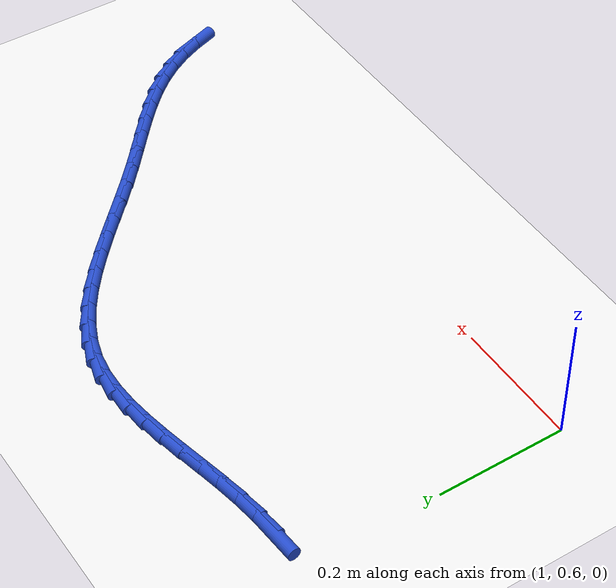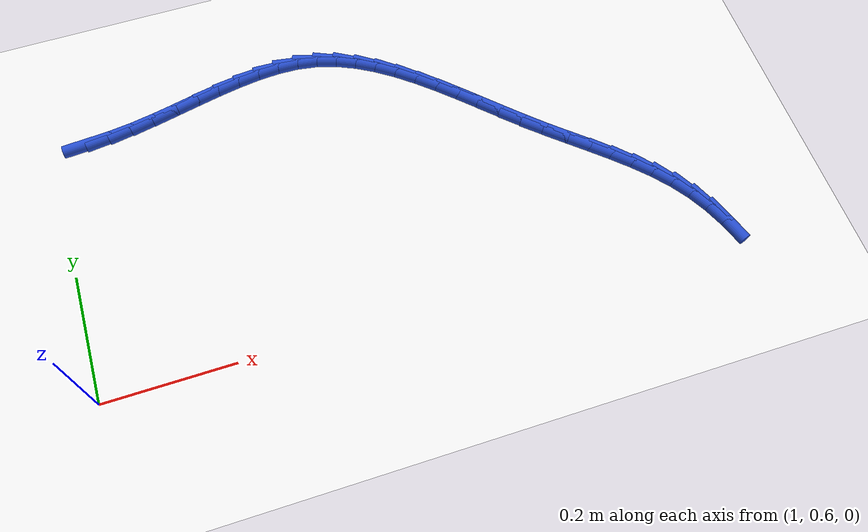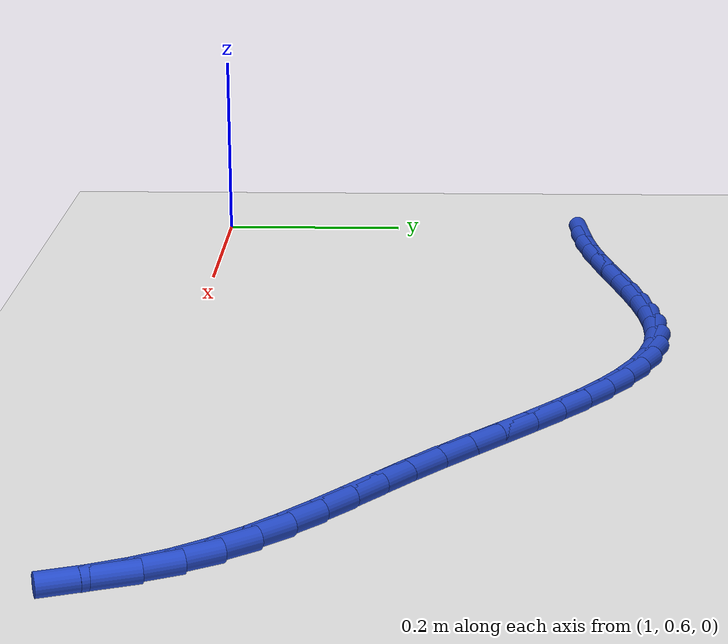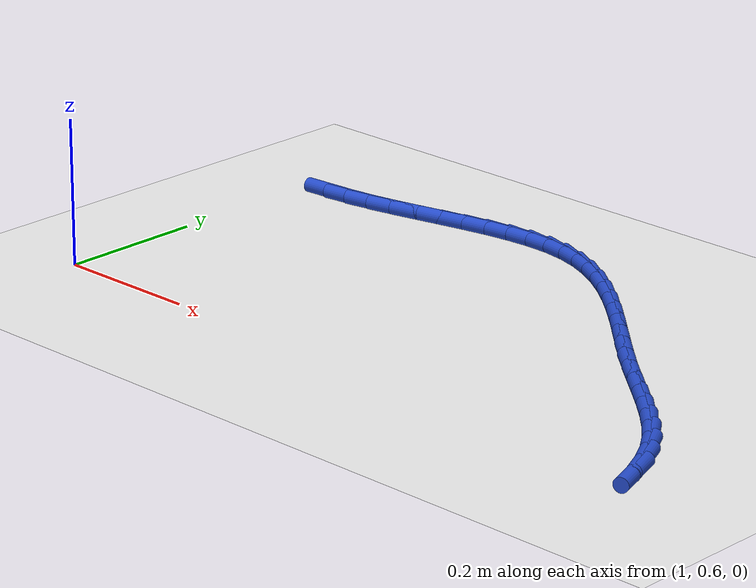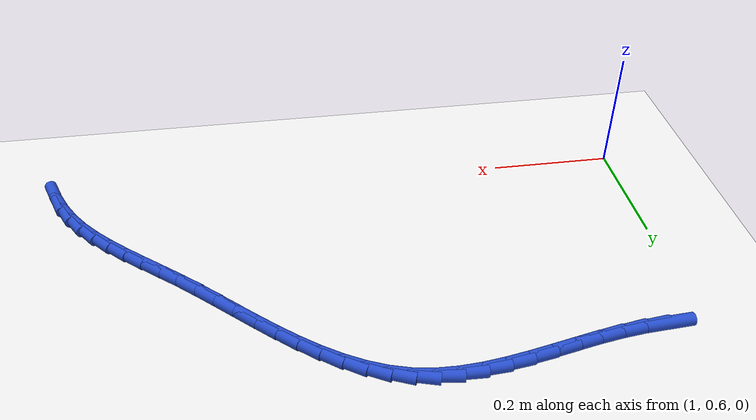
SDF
<sdf version="1.6">
 <world name="default">
  <model name="ground_plane">
   <static>1</static>
   <link name="link">
    <collision name="collision">
     <geometry><plane><normal>0 0 1</normal><size>100 100</size></plane></geometry>
     <surface><friction><ode><mu>100</mu><mu2>50</mu2></ode></friction></surface>
    </collision>
    <visual name="visual">
     <cast_shadows>0</cast_shadows>
     <geometry><plane><normal>0 0 1</normal><size>100 100</size></plane></geometry>
     <material>
      <script><uri>file://media/materials/scripts/gazebo.material</uri><name>Gazebo/WhiteGlow</name></script>
     </material>
    </visual>
   </link>
  </model>
  <model name="line">
   <link name="link_47">
    <pose>1.0572963647985636 1.0157097087116487 0.01 0 1.57 0.0674458855068575</pose>
    <collision name="collision">
     <geometry><cylinder><radius>0.01</radius><length>0.08</length></cylinder></geometry>
    </collision>
    <visual name="visual">
     <material>
      <script><name>Gazebo/Blue</name><uri>file://media/materials/scripts/gazebo.material</uri></script>
     </material>
     <geometry><cylinder><radius>0.01</radius><length>0.08</length></cylinder></geometry>
    </visual>
   </link>
   <link name="link_48">
    <pose>1.0930270546097247 1.018123257538345 0.01 0 1.57 0.1257058451458308</pose>
    <collision name="collision">
     <geometry><cylinder><radius>0.01</radius><length>0.08</length></cylinder></geometry>
    </collision>
    <visual name="visual">
     <material>
      <script><name>Gazebo/Blue</name><uri>file://media/materials/scripts/gazebo.material</uri></script>
     </material>
     <geometry><cylinder><radius>0.01</radius><length>0.08</length></cylinder></geometry>
    </visual>
   </link>
   <link name="link_49">
    <pose>1.129036618281931 1.0226738649669316 0.01 0 1.57 0.17567723894438655</pose>
    <collision name="collision">
     <geometry><cylinder><radius>0.01</radius><length>0.08</length></cylinder></geometry>
    </collision>
    <visual name="visual">
     <material>
      <script><name>Gazebo/Blue</name><uri>file://media/materials/scripts/gazebo.material</uri></script>
     </material>
     <geometry><cylinder><radius>0.01</radius><length>0.08</length></cylinder></geometry>
    </visual>
   </link>
   <link name="link_50">
    <pose>1.1652572915109904 1.029103292036805 0.01 0 1.57 0.20604356557983597</pose>
    <collision name="collision">
     <geometry><cylinder><radius>0.01</radius><length>0.08</length></cylinder></geometry>
    </collision>
    <visual name="visual">
     <material>
      <script><name>Gazebo/Blue</name><uri>file://media/materials/scripts/gazebo.material</uri></script>
     </material>
     <geometry><cylinder><radius>0.01</radius><length>0.08</length></cylinder></geometry>
    </visual>
   </link>
   <link name="link_51">
    <pose>1.201534327096754 1.0366855455881054 0.01 0 1.57 0.21759530469358354</pose>
    <collision name="collision">
     <geometry><cylinder><radius>0.01</radius><length>0.08</length></cylinder></geometry>
    </collision>
    <visual name="visual">
     <material>
      <script><name>Gazebo/Blue</name><uri>file://media/materials/scripts/gazebo.material</uri></script>
     </material>
     <geometry><cylinder><radius>0.01</radius><length>0.08</length></cylinder></geometry>
    </visual>
   </link>
   <link name="link_52">
    <pose>1.23771101174525 1.0446840597083418 0.01 0 1.57 0.21059146274823012</pose>
    <collision name="collision">
     <geometry><cylinder><radius>0.01</radius><length>0.08</length></cylinder></geometry>
    </collision>
    <visual name="visual">
     <material>
      <script><name>Gazebo/Blue</name><uri>file://media/materials/scripts/gazebo.material</uri></script>
     </material>
     <geometry><cylinder><radius>0.01</radius><length>0.08</length></cylinder></geometry>
    </visual>
   </link>
   <link name="link_53">
    <pose>1.2736306321625064 1.0523622684850245 0.01 0 1.57 0.18436806937053457</pose>
    <collision name="collision">
     <geometry><cylinder><radius>0.01</radius><length>0.08</length></cylinder></geometry>
    </collision>
    <visual name="visual">
     <material>
      <script><name>Gazebo/Blue</name><uri>file://media/materials/scripts/gazebo.material</uri></script>
     </material>
     <geometry><cylinder><radius>0.01</radius><length>0.08</length></cylinder></geometry>
    </visual>
   </link>
   <link name="link_54">
    <pose>1.3091364750545527 1.0589836060056632 0.01 0 1.57 0.137325465639768</pose>
    <collision name="collision">
     <geometry><cylinder><radius>0.01</radius><length>0.08</length></cylinder></geometry>
    </collision>
    <visual name="visual">
     <material>
      <script><name>Gazebo/Blue</name><uri>file://media/materials/scripts/gazebo.material</uri></script>
     </material>
     <geometry><cylinder><radius>0.01</radius><length>0.08</length></cylinder></geometry>
    </visual>
   </link>
   <link name="link_55">
    <pose>1.344071827127416 1.0638115063577673 0.01 0 1.57 0.06707321019510204</pose>
    <collision name="collision">
     <geometry><cylinder><radius>0.01</radius><length>0.08</length></cylinder></geometry>
    </collision>
    <visual name="visual">
     <material>
      <script><name>Gazebo/Blue</name><uri>file://media/materials/scripts/gazebo.material</uri></script>
     </material>
     <geometry><cylinder><radius>0.01</radius><length>0.08</length></cylinder></geometry>
    </visual>
   </link>
   <link name="link_56">
    <pose>1.3782799750871249 1.0661094036288465 0.01 0 1.57 -0.029059906769959794</pose>
    <collision name="collision">
     <geometry><cylinder><radius>0.01</radius><length>0.08</length></cylinder></geometry>
    </collision>
    <visual name="visual">
     <material>
      <script><name>Gazebo/Blue</name><uri>file://media/materials/scripts/gazebo.material</uri></script>
     </material>
     <geometry><cylinder><radius>0.01</radius><length>0.08</length></cylinder></geometry>
    </visual>
   </link>
   <link name="link_57">
    <pose>1.4116042056397082 1.0651407319064106 0.01 0 1.57 -0.1527414919998399</pose>
    <collision name="collision">
     <geometry><cylinder><radius>0.01</radius><length>0.08</length></cylinder></geometry>
    </collision>
    <visual name="visual">
     <material>
      <script><name>Gazebo/Blue</name><uri>file://media/materials/scripts/gazebo.material</uri></script>
     </material>
     <geometry><cylinder><radius>0.01</radius><length>0.08</length></cylinder></geometry>
    </visual>
   </link>
   <link name="link_58">
    <pose>1.4438882835481863 1.0601709048054642 0.01 0 1.57 -0.2911331496929525</pose>
    <collision name="collision">
     <geometry><cylinder><radius>0.01</radius><length>0.08</length></cylinder></geometry>
    </collision>
    <visual name="visual">
     <material>
      <script><name>Gazebo/Blue</name><uri>file://media/materials/scripts/gazebo.material</uri></script>
     </material>
     <geometry><cylinder><radius>0.01</radius><length>0.08</length></cylinder></geometry>
    </visual>
   </link>
   <link name="link_59">
    <pose>1.4750638542922023 1.0508292304087916 0.01 0 1.57 -0.41492777400528913</pose>
    <collision name="collision">
     <geometry><cylinder><radius>0.01</radius><length>0.08</length></cylinder></geometry>
    </collision>
    <visual name="visual">
     <material>
      <script><name>Gazebo/Blue</name><uri>file://media/materials/scripts/gazebo.material</uri></script>
     </material>
     <geometry><cylinder><radius>0.01</radius><length>0.08</length></cylinder></geometry>
    </visual>
   </link>
   <link name="link_60">
    <pose>1.5052524028665686 1.0375310999353935 0.01 0 1.57 -0.5182870962613952</pose>
    <collision name="collision">
     <geometry><cylinder><radius>0.01</radius><length>0.08</length></cylinder></geometry>
    </collision>
    <visual name="visual">
     <material>
      <script><name>Gazebo/Blue</name><uri>file://media/materials/scripts/gazebo.material</uri></script>
     </material>
     <geometry><cylinder><radius>0.01</radius><length>0.08</length></cylinder></geometry>
    </visual>
   </link>
   <link name="link_61">
    <pose>1.5346001616126972 1.0207943778528599 0.01 0 1.57 -0.6013001775073027</pose>
    <collision name="collision">
     <geometry><cylinder><radius>0.01</radius><length>0.08</length></cylinder></geometry>
    </collision>
    <visual name="visual">
     <material>
      <script><name>Gazebo/Blue</name><uri>file://media/materials/scripts/gazebo.material</uri></script>
     </material>
     <geometry><cylinder><radius>0.01</radius><length>0.08</length></cylinder></geometry>
    </visual>
   </link>
   <link name="link_62">
    <pose>1.563253362872003 1.0011369286287812 0.01 0 1.57 -0.6654830634347446</pose>
    <collision name="collision">
     <geometry><cylinder><radius>0.01</radius><length>0.08</length></cylinder></geometry>
    </collision>
    <visual name="visual">
     <material>
      <script><name>Gazebo/Blue</name><uri>file://media/materials/scripts/gazebo.material</uri></script>
     </material>
     <geometry><cylinder><radius>0.01</radius><length>0.08</length></cylinder></geometry>
    </visual>
   </link>
   <link name="link_63">
    <pose>1.5913582389858982 0.9790766167307475 0.01 0 1.57 -0.7127746688904026</pose>
    <collision name="collision">
     <geometry><cylinder><radius>0.01</radius><length>0.08</length></cylinder></geometry>
    </collision>
    <visual name="visual">
     <material>
      <script><name>Gazebo/Blue</name><uri>file://media/materials/scripts/gazebo.material</uri></script>
     </material>
     <geometry><cylinder><radius>0.01</radius><length>0.08</length></cylinder></geometry>
    </visual>
   </link>
   <link name="link_64">
    <pose>1.6190610222957975 0.9551313066263486 0.01 0 1.57 -0.7449633413365636</pose>
    <collision name="collision">
     <geometry><cylinder><radius>0.01</radius><length>0.08</length></cylinder></geometry>
    </collision>
    <visual name="visual">
     <material>
      <script><name>Gazebo/Blue</name><uri>file://media/materials/scripts/gazebo.material</uri></script>
     </material>
     <geometry><cylinder><radius>0.01</radius><length>0.08</length></cylinder></geometry>
    </visual>
   </link>
   <link name="link_65">
    <pose>1.6465079451431135 0.9298188627831747 0.01 0 1.57 -0.7634278035094564</pose>
    <collision name="collision">
     <geometry><cylinder><radius>0.01</radius><length>0.08</length></cylinder></geometry>
    </collision>
    <visual name="visual">
     <material>
      <script><name>Gazebo/Blue</name><uri>file://media/materials/scripts/gazebo.material</uri></script>
     </material>
     <geometry><cylinder><radius>0.01</radius><length>0.08</length></cylinder></geometry>
    </visual>
   </link>
   <link name="link_66">
    <pose>1.6738452398692591 0.903657149668816 0.01 0 1.57 -0.769048593693398</pose>
    <collision name="collision">
     <geometry><cylinder><radius>0.01</radius><length>0.08</length></cylinder></geometry>
    </collision>
    <visual name="visual">
     <material>
      <script><name>Gazebo/Blue</name><uri>file://media/materials/scripts/gazebo.material</uri></script>
     </material>
     <geometry><cylinder><radius>0.01</radius><length>0.08</length></cylinder></geometry>
    </visual>
   </link>
   <link name="link_67">
    <pose>1.7012191388156488 0.8771640317508623 0.01 0 1.57 -0.7621940390661649</pose>
    <collision name="collision">
     <geometry><cylinder><radius>0.01</radius><length>0.08</length></cylinder></geometry>
    </collision>
    <visual name="visual">
     <material>
      <script><name>Gazebo/Blue</name><uri>file://media/materials/scripts/gazebo.material</uri></script>
     </material>
     <geometry><cylinder><radius>0.01</radius><length>0.08</length></cylinder></geometry>
    </visual>
   </link>
   <link name="link_68">
    <pose>1.7287758743236958 0.8508573734969038 0.01 0 1.57 -0.7427766465327265</pose>
    <collision name="collision">
     <geometry><cylinder><radius>0.01</radius><length>0.08</length></cylinder></geometry>
    </collision>
    <visual name="visual">
     <material>
      <script><name>Gazebo/Blue</name><uri>file://media/materials/scripts/gazebo.material</uri></script>
     </material>
     <geometry><cylinder><radius>0.01</radius><length>0.08</length></cylinder></geometry>
    </visual>
   </link>
   <link name="link_69">
    <pose>1.7566607033302541 0.8252536876010425 0.01 0 1.57 -0.7189328287618874</pose>
    <collision name="collision">
     <geometry><cylinder><radius>0.01</radius><length>0.08</length></cylinder></geometry>
    </collision>
    <visual name="visual">
     <material>
      <script><name>Gazebo/Blue</name><uri>file://media/materials/scripts/gazebo.material</uri></script>
     </material>
     <geometry><cylinder><radius>0.01</radius><length>0.08</length></cylinder></geometry>
    </visual>
   </link>
   <link name="link_70">
    <pose>1.784826778648616 0.8006032574694278 0.01 0 1.57 -0.709641354633956</pose>
    <collision name="collision">
     <geometry><cylinder><radius>0.01</radius><length>0.08</length></cylinder></geometry>
    </collision>
    <visual name="visual">
     <material>
      <script><name>Gazebo/Blue</name><uri>file://media/materials/scripts/gazebo.material</uri></script>
     </material>
     <geometry><cylinder><radius>0.01</radius><length>0.08</length></cylinder></geometry>
    </visual>
   </link>
   <link name="link_71">
    <pose>1.8128056384524904 0.7765720679350939 0.01 0 1.57 -0.7180971233676402</pose>
    <collision name="collision">
     <geometry><cylinder><radius>0.01</radius><length>0.08</length></cylinder></geometry>
    </collision>
    <visual name="visual">
     <material>
      <script><name>Gazebo/Blue</name><uri>file://media/materials/scripts/gazebo.material</uri></script>
     </material>
     <geometry><cylinder><radius>0.01</radius><length>0.08</length></cylinder></geometry>
    </visual>
   </link>
   <link name="link_72">
    <pose>1.8400728422825565 0.7527485253213826 0.01 0 1.57 -0.7453940636594112</pose>
    <collision name="collision">
     <geometry><cylinder><radius>0.01</radius><length>0.08</length></cylinder></geometry>
    </collision>
    <visual name="visual">
     <material>
      <script><name>Gazebo/Blue</name><uri>file://media/materials/scripts/gazebo.material</uri></script>
     </material>
     <geometry><cylinder><radius>0.01</radius><length>0.08</length></cylinder></geometry>
    </visual>
   </link>
   <link name="link_73">
    <pose>1.866103949679493 0.7287210359516352 0.01 0 1.57 -0.793012652969606</pose>
    <collision name="collision">
     <geometry><cylinder><radius>0.01</radius><length>0.08</length></cylinder></geometry>
    </collision>
    <visual name="visual">
     <material>
      <script><name>Gazebo/Blue</name><uri>file://media/materials/scripts/gazebo.material</uri></script>
     </material>
     <geometry><cylinder><radius>0.01</radius><length>0.08</length></cylinder></geometry>
    </visual>
   </link>
   <link name="link_74">
    <pose>1.8903745201839806 0.7040780061491931 0.01 0 1.57 -0.8625610352688857</pose>
    <collision name="collision">
     <geometry><cylinder><radius>0.01</radius><length>0.08</length></cylinder></geometry>
    </collision>
    <visual name="visual">
     <material>
      <script><name>Gazebo/Blue</name><uri>file://media/materials/scripts/gazebo.material</uri></script>
     </material>
     <geometry><cylinder><radius>0.01</radius><length>0.08</length></cylinder></geometry>
    </visual>
   </link>
   <link name="link_75">
    <pose>1.9123601133366974 0.6784078422373974 0.01 0 1.57 -0.9550703370006088</pose>
    <collision name="collision">
     <geometry><cylinder><radius>0.01</radius><length>0.08</length></cylinder></geometry>
    </collision>
    <visual name="visual">
     <material>
      <script><name>Gazebo/Blue</name><uri>file://media/materials/scripts/gazebo.material</uri></script>
     </material>
     <geometry><cylinder><radius>0.01</radius><length>0.08</length></cylinder></geometry>
    </visual>
   </link>
   <link name="link_76">
    <pose>1.9315381468479251 0.6513001717759448 0.01 0 1.57 -1.060467227652324</pose>
    <collision name="collision">
     <geometry><cylinder><radius>0.01</radius><length>0.08</length></cylinder></geometry>
    </collision>
    <visual name="visual">
     <material>
      <script><name>Gazebo/Blue</name><uri>file://media/materials/scripts/gazebo.material</uri></script>
     </material>
     <geometry><cylinder><radius>0.01</radius><length>0.08</length></cylinder></geometry>
    </visual>
   </link>
   <link name="link_77">
    <pose>1.9476500622085606 0.6225181454728663 0.01 0 1.57 -1.1570530969371684</pose>
    <collision name="collision">
     <geometry><cylinder><radius>0.01</radius><length>0.08</length></cylinder></geometry>
    </collision>
    <visual name="visual">
     <material>
      <script><name>Gazebo/Blue</name><uri>file://media/materials/scripts/gazebo.material</uri></script>
     </material>
     <geometry><cylinder><radius>0.01</radius><length>0.08</length></cylinder></geometry>
    </visual>
   </link>
   <link name="link_78">
    <pose>1.9609726311764195 0.5921767467123961 0.01 0 1.57 -1.2407419334439116</pose>
    <collision name="collision">
     <geometry><cylinder><radius>0.01</radius><length>0.08</length></cylinder></geometry>
    </collision>
    <visual name="visual">
     <material>
      <script><name>Gazebo/Blue</name><uri>file://media/materials/scripts/gazebo.material</uri></script>
     </material>
     <geometry><cylinder><radius>0.01</radius><length>0.08</length></cylinder></geometry>
    </visual>
   </link>
  </model>
 </world>
</sdf>
